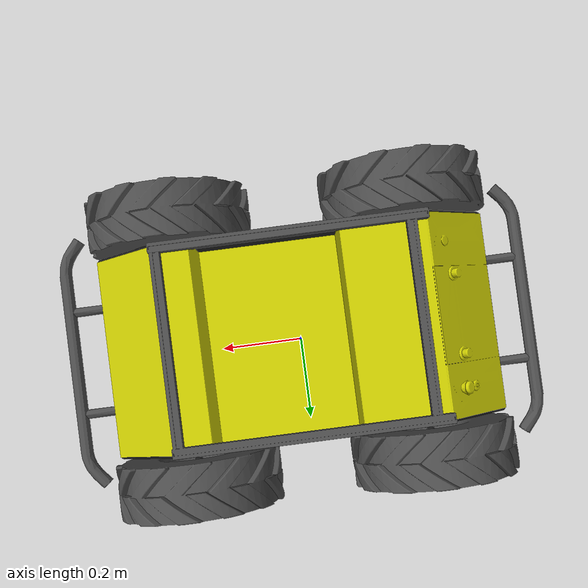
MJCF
<mujoco model="husky_robot">
  <compiler angle="radian" meshdir="./meshes/" autolimits="true"/>
  <!-- Default -->
  <default>
    <joint limited="false" armature="0.01" /> <!-- rolling joint -->
    <equality solref="0.0002 1" solimp="0.99 0.99 0.0001" />
  </default>
  <asset>
    <mesh name="base_link" file="base_link.stl"/>
    <mesh name="wheel" file="wheel.stl"/>
    <mesh name="top_plate" file="top_plate.stl"/>
    <mesh name="user_rail" file="user_rail.stl"/>
    <mesh name="bumper" file="bumper.stl"/>
  </asset>
  <worldbody>
    <body name="base_husky" pos="0 0 0.1" euler="0 0 0" >
      <!-- Originally the mass of base_husky was "mass="2.637" -->
      <inertial pos="0 0 0" quat="0.5 0.5 -0.5 0.5" mass="100" diaginertia="0.04411 0.02467 0.02467"/>
      <joint type="free" name="base_husky_joint" />
      <geom pos="0 0 0.14493" type="mesh" contype="0" conaffinity="1" group="1" density="0" rgba="0.1 0.1 0.1 1" mesh="base_link"/>
      <geom pos="0 0 0.14493" type="mesh" contype="0" conaffinity="1" group="1" density="0" rgba="0.8 0.8 0 1" mesh="top_plate"/>
      <geom pos="0.272 0 0.38993" type="mesh" contype="0" conaffinity="1" group="1" density="0" rgba="0.3 0.3 0.3 1" mesh="user_rail"/>
      <geom pos="0.48 0 0.23593" type="mesh" contype="0" conaffinity="1" group="1" density="0" rgba="0.3 0.3 0.3 1" mesh="bumper"/>
      <geom pos="-0.48 0 0.23593" quat="1.32679e-06 0 0 1" type="mesh" contype="0" conaffinity="1" group="1" density="0" rgba="0.3 0.3 0.3 1" mesh="bumper"/>
      <body name="front_left_wheel_link" pos="0.256 0.2854 0.17775" gravcomp="0" euler="0 0 3.14">
        <inertial pos="0 0 0" quat="0.5 0.5 -0.5 0.5" mass="2.637" diaginertia="0.04411 0.02467 0.02467"/>
        <joint name="front_left_wheel" pos="0 0 0" axis="0 1 0"/>
        <geom type="mesh" contype="0" conaffinity="1" group="1" density="0" rgba="0.3 0.3 0.3 1" mesh="wheel"/>
      </body>
      <body name="front_right_wheel_link" pos="0.256 -0.2854 0.17775" gravcomp="0" euler="0 0 3.14">
        <inertial pos="0 0 0" quat="0.5 0.5 -0.5 0.5" mass="2.637" diaginertia="0.04411 0.02467 0.02467"/>
        <joint name="front_right_wheel" pos="0 0 0" axis="0 1 0"/>
        <geom type="mesh" contype="0" conaffinity="1" group="1" density="0" rgba="0.3 0.3 0.3 1" mesh="wheel"/>
      </body>
      <body name="rear_left_wheel_link" pos="-0.256 0.2854 0.17775" gravcomp="0" euler="0 0 3.14">
        <inertial pos="0 0 0" quat="0.5 0.5 -0.5 0.5" mass="2.637" diaginertia="0.04411 0.02467 0.02467"/>
        <joint name="rear_left_wheel" pos="0 0 0" axis="0 1 0"/>
        <geom type="mesh" contype="0" conaffinity="1" group="1" density="0" rgba="0.3 0.3 0.3 1" mesh="wheel"/>
      </body>
      <body name="rear_right_wheel_link" pos="-0.256 -0.2854 0.17775" gravcomp="0" euler="0 0 3.14">
        <inertial pos="0 0 0" quat="0.5 0.5 -0.5 0.5" mass="2.637" diaginertia="0.04411 0.02467 0.02467"/>
        <joint name="rear_right_wheel" pos="0 0 0" axis="0 1 0"/>
        <geom type="mesh" contype="0" conaffinity="1" group="1" density="0" rgba="0.3 0.3 0.3 1" mesh="wheel"/>
      </body>
    </body>
  </worldbody>
  <actuator>
    <velocity name="front_left_actuator" ctrllimited="true" ctrlrange="-100.0 100.0" gear="-1"
      kv="10" joint="front_left_wheel" />
    <velocity name="front_right_actuator" ctrllimited="true" ctrlrange="-100.0 100.0" gear="-1"
      kv="10" joint="front_right_wheel" />
    <velocity name="rear_left_actuator" ctrllimited="true" ctrlrange="-100.0 100.0" gear="-1"
      kv="10" joint="rear_left_wheel" />
    <velocity name="rear_right_actuator" ctrllimited="true" ctrlrange="-100.0 100.0" gear="-1"
      kv="10" joint="rear_right_wheel" />
  </actuator>
</mujoco>
